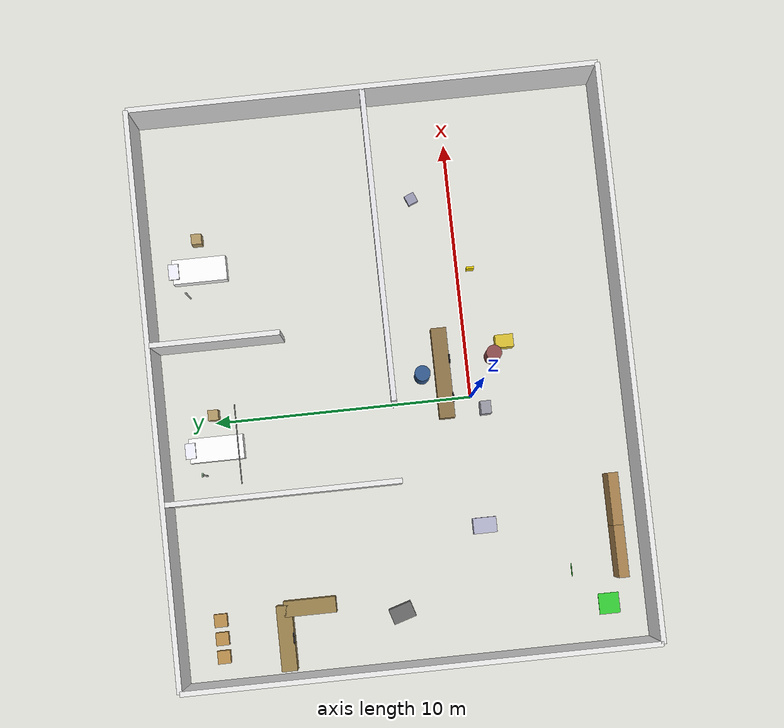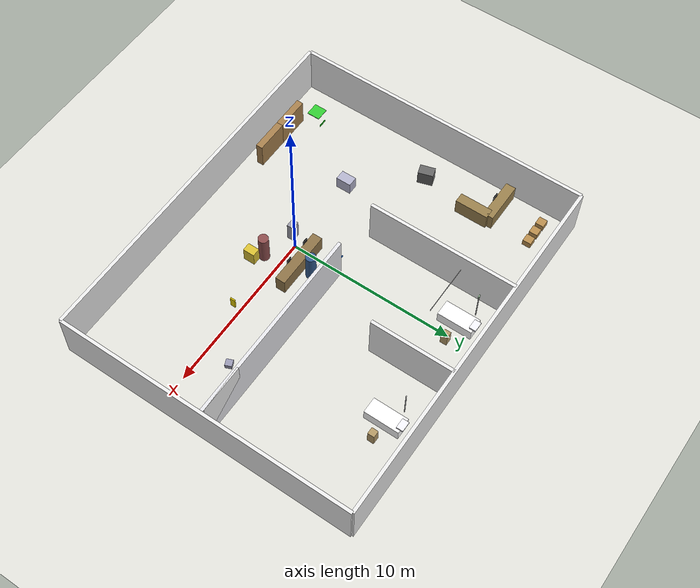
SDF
<?xml version="1.0" ?>
<sdf version="1.6">
  <world name="hospital">

    <!-- ===== PHYSICS ===== -->
    <physics name="default_physics" default="true" type="ode">
      <max_step_size>0.001</max_step_size>
      <real_time_factor>1.0</real_time_factor>
      <real_time_update_rate>1000</real_time_update_rate>
    </physics>

    <!-- ===== LIGHTING (Hospital Cool White 6000K) ===== -->
    <light name="main_light_1" type="directional">
      <pose>0 0 8 0 0 0</pose>
      <diffuse>0.95 0.97 1.0 1</diffuse>
      <specular>0.1 0.1 0.1 1</specular>
      <direction>0.0 0.0 -1.0</direction>
      <cast_shadows>false</cast_shadows>
    </light>

    <light name="corridor_light_1" type="point">
      <pose>0 0 3.8 0 0 0</pose>
      <diffuse>0.95 0.97 1.0 1</diffuse>
      <specular>0.05 0.05 0.05 1</specular>
      <attenuation><range>10</range><linear>0.1</linear><constant>0.5</constant></attenuation>
      <cast_shadows>false</cast_shadows>
    </light>

    <light name="corridor_light_2" type="point">
      <pose>8 0 3.8 0 0 0</pose>
      <diffuse>0.95 0.97 1.0 1</diffuse>
      <specular>0.05 0.05 0.05 1</specular>
      <attenuation><range>10</range><linear>0.1</linear><constant>0.5</constant></attenuation>
      <cast_shadows>false</cast_shadows>
    </light>

    <light name="reception_light" type="point">
      <pose>-8 4 3.8 0 0 0</pose>
      <diffuse>0.95 0.97 1.0 1</diffuse>
      <specular>0.05 0.05 0.05 1</specular>
      <attenuation><range>8</range><linear>0.1</linear><constant>0.5</constant></attenuation>
      <cast_shadows>false</cast_shadows>
    </light>

    <!-- ===== GROUND (Linoleum Floor) ===== -->
    <model name="ground_plane">
      <static>true</static>
      <link name="link">
        <collision name="col">
          <geometry><plane><normal>0 0 1</normal><size>60 60</size></plane></geometry>
          <surface>
            <friction>
              <ode><mu>0.8</mu><mu2>0.8</mu2></ode>
            </friction>
          </surface>
        </collision>
        <visual name="vis">
          <geometry><plane><normal>0 0 1</normal><size>60 60</size></plane></geometry>
          <material>
            <ambient>0.88 0.88 0.85 1</ambient>
            <diffuse>0.88 0.88 0.85 1</diffuse>
            <specular>0.05 0.05 0.05 1</specular>
          </material>
        </visual>
      </link>
    </model>

    <!--                     HOSPITAL STRUCTURE                            -->
    <!-- L-SHAPED LAYOUT:                                                  -->
    <!--  Main corridor runs East-West (y=0, x=-10 to x=12)               -->
    <!--  Branch corridor runs North (x=-10, y=0 to y=12)                 -->
    <!--  Reception: top-left                                              -->
    <!--  Patient Rooms: along top corridor                                -->
    <!--  Operating Theater: end of east corridor                          -->
    <!--  Charging Bay: south side                                         -->
    <!--  Nurses Station: center junction                                  -->

    <!-- ===== OUTER BOUNDARY WALLS ===== -->

    <!-- North wall (top) -->
    <model name="wall_north">
      <static>true</static><pose>1 12 1.5 0 0 0</pose>
      <link name="link">
        <collision name="col"><geometry><box><size>22 0.2 3</size></box></geometry></collision>
        <visual name="vis"><geometry><box><size>22 0.2 3</size></box></geometry>
          <material><ambient>0.92 0.92 0.92 1</ambient><diffuse>0.92 0.92 0.92 1</diffuse><specular>0.02 0.02 0.02 1</specular></material>
        </visual>
      </link>
    </model>

    <!-- South wall -->
    <model name="wall_south">
      <static>true</static><pose>1 -6 1.5 0 0 0</pose>
      <link name="link">
        <collision name="col"><geometry><box><size>22 0.2 3</size></box></geometry></collision>
        <visual name="vis"><geometry><box><size>22 0.2 3</size></box></geometry>
          <material><ambient>0.92 0.92 0.92 1</ambient><diffuse>0.92 0.92 0.92 1</diffuse><specular>0.02 0.02 0.02 1</specular></material>
        </visual>
      </link>
    </model>

    <!-- West wall -->
    <model name="wall_west">
      <static>true</static><pose>-10 3 1.5 0 0 0</pose>
      <link name="link">
        <collision name="col"><geometry><box><size>0.2 18 3</size></box></geometry></collision>
        <visual name="vis"><geometry><box><size>0.2 18 3</size></box></geometry>
          <material><ambient>0.92 0.92 0.92 1</ambient><diffuse>0.92 0.92 0.92 1</diffuse><specular>0.02 0.02 0.02 1</specular></material>
        </visual>
      </link>
    </model>

    <!-- East wall -->
    <model name="wall_east">
      <static>true</static><pose>12 3 1.5 0 0 0</pose>
      <link name="link">
        <collision name="col"><geometry><box><size>0.2 18 3</size></box></geometry></collision>
        <visual name="vis"><geometry><box><size>0.2 18 3</size></box></geometry>
          <material><ambient>0.92 0.92 0.92 1</ambient><diffuse>0.92 0.92 0.92 1</diffuse><specular>0.02 0.02 0.02 1</specular></material>
        </visual>
      </link>
    </model>

    <!-- ===== MAIN CORRIDOR WALLS (East-West, y=0 center, width=3m) ===== -->

    <!-- Corridor north wall segment east -->
    <model name="corridor_north_east">
      <static>true</static><pose>6 3 1.5 0 0 0</pose>
      <link name="link">
        <collision name="col"><geometry><box><size>12 0.2 3</size></box></geometry></collision>
        <visual name="vis"><geometry><box><size>12 0.2 3</size></box></geometry>
          <material><ambient>0.90 0.90 0.92 1</ambient><diffuse>0.90 0.90 0.92 1</diffuse><specular>0.02 0.02 0.02 1</specular></material>
        </visual>
      </link>
    </model>

    <!-- ===== RECEPTION AREA (x=-10 to -7, y=3 to 12) ===== -->

    <!-- Supply table -->
    <model name="supply_table">
      <static>true</static><pose>-8.5 8 0.5 0 0 0</pose>
      <link name="link">
        <collision name="col"><geometry><box><size>2.5 0.6 1.0</size></box></geometry></collision>
        <visual name="vis"><geometry><box><size>2.5 0.6 1.0</size></box></geometry>
          <material><ambient>0.6 0.5 0.3 1</ambient><diffuse>0.6 0.5 0.3 1</diffuse></material>
        </visual>
      </link>
    </model>

    <!-- Supply side panel -->
    <model name="supply_side">
      <static>true</static><pose>-7.4 7.0 0.5 0 0 0</pose>
      <link name="link">
        <collision name="col"><geometry><box><size>0.6 2.0 1.0</size></box></geometry></collision>
        <visual name="vis"><geometry><box><size>0.6 2.0 1.0</size></box></geometry>
          <material><ambient>0.6 0.5 0.3 1</ambient><diffuse>0.6 0.5 0.3 1</diffuse></material>
        </visual>
      </link>
    </model>

    <!-- Reception computer monitor -->
    <model name="reception_monitor">
      <static>true</static><pose>-8.5 7.7 1.1 0 0 0</pose>
      <link name="link">
        <collision name="col"><geometry><box><size>0.4 0.05 0.3</size></box></geometry></collision>
        <visual name="vis"><geometry><box><size>0.4 0.05 0.3</size></box></geometry>
          <material><ambient>0.1 0.1 0.1 1</ambient><diffuse>0.1 0.1 0.1 1</diffuse></material>
        </visual>
      </link>
    </model>

    <!-- Waiting chairs (3 chairs) -->
    <!-- Supply boxes near reception (3 boxes) -->
    <model name="supply_box_1">
      <static>true</static><pose>-9.0 10.5 0.2 0 0 0</pose>
      <link name="link">
        <collision name="col"><geometry><box><size>0.5 0.5 0.4</size></box></geometry></collision>
        <visual name="vis"><geometry><box><size>0.5 0.5 0.4</size></box></geometry>
          <material><ambient>0.72 0.55 0.3 1</ambient><diffuse>0.72 0.55 0.3 1</diffuse></material>
        </visual>
      </link>
    </model>

    <model name="supply_box_2">
      <static>true</static><pose>-8.3 10.5 0.2 0 0 0</pose>
      <link name="link">
        <collision name="col"><geometry><box><size>0.5 0.5 0.4</size></box></geometry></collision>
        <visual name="vis"><geometry><box><size>0.5 0.5 0.4</size></box></geometry>
          <material><ambient>0.72 0.55 0.3 1</ambient><diffuse>0.72 0.55 0.3 1</diffuse></material>
        </visual>
      </link>
    </model>

    <model name="supply_box_3">
      <static>true</static><pose>-7.6 10.5 0.2 0 0 0</pose>
      <link name="link">
        <collision name="col"><geometry><box><size>0.5 0.5 0.4</size></box></geometry></collision>
        <visual name="vis"><geometry><box><size>0.5 0.5 0.4</size></box></geometry>
          <material><ambient>0.72 0.55 0.3 1</ambient><diffuse>0.72 0.55 0.3 1</diffuse></material>
        </visual>
      </link>
    </model>

    <!-- ===== PATIENT ROOM 1 (x=-3 to 3, y=3 to 12) ===== -->
    <!-- Room 1 west wall -->
    <model name="room1_west">
      <static>true</static><pose>-3 7.5 1.5 0 0 0</pose>
      <link name="link">
        <collision name="col"><geometry><box><size>0.2 9 3</size></box></geometry></collision>
        <visual name="vis"><geometry><box><size>0.2 9 3</size></box></geometry>
          <material><ambient>0.92 0.92 0.92 1</ambient><diffuse>0.92 0.92 0.92 1</diffuse></material>
        </visual>
      </link>
    </model>

    <!-- Room 1 east wall (with door gap) -->
    <model name="room1_east_top">
      <static>true</static><pose>3 9.5 1.5 0 0 0</pose>
      <link name="link">
        <collision name="col"><geometry><box><size>0.2 5 3</size></box></geometry></collision>
        <visual name="vis"><geometry><box><size>0.2 5 3</size></box></geometry>
          <material><ambient>0.92 0.92 0.92 1</ambient><diffuse>0.92 0.92 0.92 1</diffuse></material>
        </visual>
      </link>
    </model>

    <!-- Patient Room 1 Bed -->
    <model name="bed_room1">
      <static>true</static><pose>-1 10 0.35 0 0 0</pose>
      <link name="link">
        <collision name="col"><geometry><box><size>0.95 2.1 0.7</size></box></geometry></collision>
        <visual name="vis"><geometry><box><size>0.95 2.1 0.7</size></box></geometry>
          <material><ambient>1.0 1.0 1.0 1</ambient><diffuse>1.0 1.0 1.0 1</diffuse></material>
        </visual>
      </link>
    </model>

    <!-- Bed pillow -->
    <model name="pillow_room1">
      <static>true</static><pose>-1 11.0 0.75 0 0 0</pose>
      <link name="link">
        <collision name="col"><geometry><box><size>0.6 0.4 0.1</size></box></geometry></collision>
        <visual name="vis"><geometry><box><size>0.6 0.4 0.1</size></box></geometry>
          <material><ambient>0.95 0.95 1.0 1</ambient><diffuse>0.95 0.95 1.0 1</diffuse></material>
        </visual>
      </link>
    </model>

    <!-- Bedside table room 1 -->
    <model name="bedside_table_1">
      <static>true</static><pose>0.3 10 0.4 0 0 0</pose>
      <link name="link">
        <collision name="col"><geometry><box><size>0.4 0.4 0.8</size></box></geometry></collision>
        <visual name="vis"><geometry><box><size>0.4 0.4 0.8</size></box></geometry>
          <material><ambient>0.7 0.6 0.4 1</ambient><diffuse>0.7 0.6 0.4 1</diffuse></material>
        </visual>
      </link>
    </model>

    <!-- IV Stand room 1 -->
    <model name="iv_stand_1">
      <static>true</static><pose>-2.0 10.5 0.9 0 0 0</pose>
      <link name="link">
        <collision name="col"><geometry><cylinder><radius>0.03</radius><length>1.8</length></cylinder></geometry></collision>
        <visual name="vis"><geometry><cylinder><radius>0.03</radius><length>1.8</length></cylinder></geometry>
          <material><ambient>0.8 0.8 0.8 1</ambient><diffuse>0.8 0.8 0.8 1</diffuse></material>
        </visual>
      </link>
    </model>

    <!-- IV Bag -->
    <model name="iv_bag_1">
      <static>true</static><pose>-2.0 10.5 1.85 0 0 0</pose>
      <link name="link">
        <collision name="col"><geometry><box><size>0.15 0.05 0.25</size></box></geometry></collision>
        <visual name="vis"><geometry><box><size>0.15 0.05 0.25</size></box></geometry>
          <material><ambient>0.7 0.9 0.7 0.8</ambient><diffuse>0.7 0.9 0.7 0.8</diffuse></material>
        </visual>
      </link>
    </model>

    <!-- Privacy curtain rail room 1 -->
    <model name="curtain_rail_1">
      <static>true</static><pose>-1 9.0 2.5 0 0 0</pose>
      <link name="link">
        <collision name="col"><geometry><cylinder><radius>0.02</radius><length>3.0</length></cylinder></geometry>
          <pose>0 0 0 0 1.5708 0</pose>
        </collision>
        <visual name="vis">
          <geometry>
            <cylinder>
              <radius>0.02</radius>
              <length>3.0</length>
            </cylinder>
          </geometry>
          <pose>0 0 0 0 1.5708 0</pose>
          <material>
            <ambient>0.7 0.7 0.7 1</ambient>
            <diffuse>0.7 0.7 0.7 1</diffuse>
          </material>
        </visual>
      </link>
    </model>

    <!-- ===== PATIENT ROOM 2 (x=3 to 9, y=3 to 12) ===== -->

    <!-- Patient Room 2 Bed -->
    <model name="bed_room2">
      <static>true</static><pose>6 10 0.35 0 0 0</pose>
      <link name="link">
        <collision name="col"><geometry><box><size>0.95 2.1 0.7</size></box></geometry></collision>
        <visual name="vis"><geometry><box><size>0.95 2.1 0.7</size></box></geometry>
          <material><ambient>1.0 1.0 1.0 1</ambient><diffuse>1.0 1.0 1.0 1</diffuse></material>
        </visual>
      </link>
    </model>

    <!-- Bed pillow room 2 -->
    <model name="pillow_room2">
      <static>true</static><pose>6 11.0 0.75 0 0 0</pose>
      <link name="link">
        <collision name="col"><geometry><box><size>0.6 0.4 0.1</size></box></geometry></collision>
        <visual name="vis"><geometry><box><size>0.6 0.4 0.1</size></box></geometry>
          <material><ambient>0.95 0.95 1.0 1</ambient><diffuse>0.95 0.95 1.0 1</diffuse></material>
        </visual>
      </link>
    </model>

    <!-- Bedside table room 2 -->
    <model name="bedside_table_2">
      <static>true</static><pose>7.2 10 0.4 0 0 0</pose>
      <link name="link">
        <collision name="col"><geometry><box><size>0.4 0.4 0.8</size></box></geometry></collision>
        <visual name="vis"><geometry><box><size>0.4 0.4 0.8</size></box></geometry>
          <material><ambient>0.7 0.6 0.4 1</ambient><diffuse>0.7 0.6 0.4 1</diffuse></material>
        </visual>
      </link>
    </model>

    <!-- IV Stand room 2 -->
    <model name="iv_stand_2">
      <static>true</static><pose>5.0 10.5 0.9 0 0 0</pose>
      <link name="link">
        <collision name="col"><geometry><cylinder><radius>0.03</radius><length>1.8</length></cylinder></geometry></collision>
        <visual name="vis"><geometry><cylinder><radius>0.03</radius><length>1.8</length></cylinder></geometry>
          <material><ambient>0.8 0.8 0.8 1</ambient><diffuse>0.8 0.8 0.8 1</diffuse></material>
        </visual>
      </link>
    </model>

    <!-- ===== NURSES STATION (center, x=-1 to 3, y=-1 to 3) ===== -->
    <model name="nurses_desk_main">
      <static>true</static><pose>1 1.0 0.5 0 0 0</pose>
      <link name="link">
        <collision name="col"><geometry><box><size>3.5 0.6 1.0</size></box></geometry></collision>
        <visual name="vis"><geometry><box><size>3.5 0.6 1.0</size></box></geometry>
          <material><ambient>0.55 0.45 0.28 1</ambient><diffuse>0.55 0.45 0.28 1</diffuse></material>
        </visual>
      </link>
    </model>

    <!-- Nurses monitor 1 -->
    <model name="nurses_monitor_1">
      <static>true</static><pose>0.0 0.7 1.1 0 0 0</pose>
      <link name="link">
        <collision name="col"><geometry><box><size>0.35 0.05 0.28</size></box></geometry></collision>
        <visual name="vis"><geometry><box><size>0.35 0.05 0.28</size></box></geometry>
          <material><ambient>0.08 0.08 0.08 1</ambient><diffuse>0.08 0.08 0.08 1</diffuse></material>
        </visual>
      </link>
    </model>

    <!-- Nurses monitor 2 -->
    <model name="nurses_monitor_2">
      <static>true</static><pose>1.5 0.7 1.1 0 0 0</pose>
      <link name="link">
        <collision name="col"><geometry><box><size>0.35 0.05 0.28</size></box></geometry></collision>
        <visual name="vis"><geometry><box><size>0.35 0.05 0.28</size></box></geometry>
          <material><ambient>0.08 0.08 0.08 1</ambient><diffuse>0.08 0.08 0.08 1</diffuse></material>
        </visual>
      </link>
    </model>

    <!-- Nurses filing cabinet -->
    <model name="filing_cabinet">
      <static>true</static><pose>-0.5 -0.5 0.6 0 0 0</pose>
      <link name="link">
        <collision name="col"><geometry><box><size>0.5 0.4 1.2</size></box></geometry></collision>
        <visual name="vis"><geometry><box><size>0.5 0.4 1.2</size></box></geometry>
          <material><ambient>0.6 0.6 0.65 1</ambient><diffuse>0.6 0.6 0.65 1</diffuse></material>
        </visual>
      </link>
    </model>

    <!-- ===== OPERATING THEATER (x=9 to 12, y=-6 to 3) ===== -->
    <model name="ot_north_wall">
      <static>true</static><pose>10.5 3 1.5 0 0 0</pose>
      <link name="link">
        <collision name="col"><geometry><box><size>3 0.2 3</size></box></geometry></collision>
        <visual name="vis"><geometry><box><size>3 0.2 3</size></box></geometry>
          <material><ambient>0.92 0.92 0.92 1</ambient><diffuse>0.92 0.92 0.92 1</diffuse></material>
        </visual>
      </link>
    </model>

    <!-- ===== STORAGE / CHARGING BAY (x=-10 to -4, y=-6 to -3) ===== -->

    <!-- Charging dock marker (flat box on floor) -->
    <model name="charging_dock">
      <static>true</static><pose>-8.5 -4.5 0.02 0 0 0</pose>
      <link name="link">
        <collision name="col"><geometry><box><size>0.8 0.8 0.04</size></box></geometry></collision>
        <visual name="vis"><geometry><box><size>0.8 0.8 0.04</size></box></geometry>
          <material><ambient>0.2 0.8 0.2 1</ambient><diffuse>0.2 0.8 0.2 1</diffuse></material>
        </visual>
      </link>
    </model>

    <!-- Storage shelf 1 -->
    <model name="shelf_1">
      <static>true</static><pose>-6.5 -5.0 0.8 0 0 0</pose>
      <link name="link">
        <collision name="col"><geometry><box><size>2.0 0.4 1.6</size></box></geometry></collision>
        <visual name="vis"><geometry><box><size>2.0 0.4 1.6</size></box></geometry>
          <material><ambient>0.65 0.5 0.3 1</ambient><diffuse>0.65 0.5 0.3 1</diffuse></material>
        </visual>
      </link>
    </model>

    <!-- Storage shelf 2 -->
    <model name="shelf_2">
      <static>true</static><pose>-4.5 -5.0 0.8 0 0 0</pose>
      <link name="link">
        <collision name="col"><geometry><box><size>2.0 0.4 1.6</size></box></geometry></collision>
        <visual name="vis"><geometry><box><size>2.0 0.4 1.6</size></box></geometry>
          <material><ambient>0.65 0.5 0.3 1</ambient><diffuse>0.65 0.5 0.3 1</diffuse></material>
        </visual>
      </link>
    </model>

    <!-- ===== HALLWAY OBSTACLES (clutter) ===== -->

    <!-- Laundry cart -->
    <model name="laundry_cart">
      <static>true</static><pose>-5 0 0.4 0 0 0</pose>
      <link name="link">
        <collision name="col"><geometry><box><size>0.6 0.9 0.8</size></box></geometry></collision>
        <visual name="vis"><geometry><box><size>0.6 0.9 0.8</size></box></geometry>
          <material><ambient>0.7 0.7 0.8 1</ambient><diffuse>0.7 0.7 0.8 1</diffuse></material>
        </visual>
      </link>
    </model>

    <!-- Food trolley -->
    <model name="food_trolley">
      <static>true</static><pose>2 -1.5 0.45 0 0 0</pose>
      <link name="link">
        <collision name="col"><geometry><box><size>0.5 0.7 0.9</size></box></geometry></collision>
        <visual name="vis"><geometry><box><size>0.5 0.7 0.9</size></box></geometry>
          <material><ambient>0.85 0.75 0.2 1</ambient><diffuse>0.85 0.75 0.2 1</diffuse></material>
        </visual>
      </link>
    </model>

    <!-- Wet floor sign -->
    <model name="wet_floor_sign">
      <static>true</static><pose>5 -0.5 0.35 0 0 0</pose>
      <link name="link">
        <collision name="col"><geometry><box><size>0.08 0.3 0.7</size></box></geometry></collision>
        <visual name="vis"><geometry><box><size>0.08 0.3 0.7</size></box></geometry>
          <material><ambient>0.9 0.8 0.0 1</ambient><diffuse>0.9 0.8 0.0 1</diffuse></material>
        </visual>
      </link>
    </model>

    <!-- Extra laundry bag on floor -->
    <model name="laundry_bag">
      <static>true</static><pose>8 1.5 0.15 0 0 0.4</pose>
      <link name="link">
        <collision name="col"><geometry><box><size>0.4 0.4 0.3</size></box></geometry></collision>
        <visual name="vis"><geometry><box><size>0.4 0.4 0.3</size></box></geometry>
          <material><ambient>0.6 0.6 0.7 1</ambient><diffuse>0.6 0.6 0.7 1</diffuse></material>
        </visual>
      </link>
    </model>

    <!-- Medicine box on floor -->

    <!-- Wheelchair parked -->
    <model name="wheelchair">
      <static>true</static><pose>-8 3.5 0.45 0 0 0.3</pose>
      <link name="link">
        <collision name="col"><geometry><box><size>0.6 0.9 0.9</size></box></geometry></collision>
        <visual name="vis"><geometry><box><size>0.6 0.9 0.9</size></box></geometry>
          <material><ambient>0.4 0.4 0.4 1</ambient><diffuse>0.4 0.4 0.4 1</diffuse></material>
        </visual>
      </link>
    </model>

    <!-- ===== SIGNAGE (at 1.5m height) ===== -->

    <!-- Room 1 sign -->
    <model name="sign_room1">
      <static>true</static><pose>0 3.05 1.5 0 0 0</pose>
      <link name="link">
        <collision name="col"><geometry><box><size>0.4 0.02 0.15</size></box></geometry></collision>
        <visual name="vis"><geometry><box><size>0.4 0.02 0.15</size></box></geometry>
          <material><ambient>0.1 0.4 0.8 1</ambient><diffuse>0.1 0.4 0.8 1</diffuse></material>
        </visual>
      </link>
    </model>

    <!-- Room 2 sign -->
    <model name="sign_room2">
      <static>true</static><pose>6 3.05 1.5 0 0 0</pose>
      <link name="link">
        <collision name="col"><geometry><box><size>0.4 0.02 0.15</size></box></geometry></collision>
        <visual name="vis"><geometry><box><size>0.4 0.02 0.15</size></box></geometry>
          <material><ambient>0.1 0.4 0.8 1</ambient><diffuse>0.1 0.4 0.8 1</diffuse></material>
        </visual>
      </link>
    </model>

    <!-- Charging bay sign -->
    <model name="sign_charging">
      <static>true</static><pose>-7 -3.05 1.5 0 0 0</pose>
      <link name="link">
        <collision name="col"><geometry><box><size>0.5 0.02 0.15</size></box></geometry></collision>
        <visual name="vis"><geometry><box><size>0.5 0.02 0.15</size></box></geometry>
          <material><ambient>0.1 0.7 0.1 1</ambient><diffuse>0.1 0.7 0.1 1</diffuse></material>
        </visual>
      </link>
    </model>

    " dangled at the end of the block.

         Both live actors are reproduced below as static cylinder models
         with the same poses and the same 0.3 m x 1.8 m collision geometry
         they already declared, so they remain physical obstacles for
         navigation and stuck-recovery testing with no mesh dependency.
         roamer_1 stays disabled, as originally intended. -->

    <model name="person_reception">
      <static>true</static>
      <pose>1.0 1.8 0.9 0 0 3.14</pose>
      <link name="body">
        <collision name="collision">
          <geometry><cylinder><radius>0.3</radius><length>1.8</length></cylinder></geometry>
        </collision>
        <visual name="visual">
          <geometry><cylinder><radius>0.3</radius><length>1.8</length></cylinder></geometry>
          <material>
            <ambient>0.2 0.35 0.55 1</ambient>
            <diffuse>0.2 0.35 0.55 1</diffuse>
          </material>
        </visual>
      </link>
    </model>

    <model name="person_patient">
      <static>true</static>
      <pose>1.5 -1.0 0.9 0 0 0</pose>
      <link name="body">
        <collision name="collision">
          <geometry><cylinder><radius>0.3</radius><length>1.8</length></cylinder></geometry>
        </collision>
        <visual name="visual">
          <geometry><cylinder><radius>0.3</radius><length>1.8</length></cylinder></geometry>
          <material>
            <ambient>0.55 0.3 0.3 1</ambient>
            <diffuse>0.55 0.3 0.3 1</diffuse>
          </material>
        </visual>
      </link>
    </model>

  </world>
</sdf>
